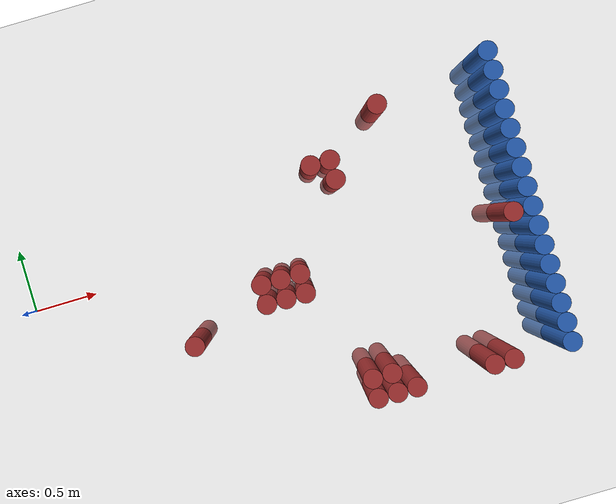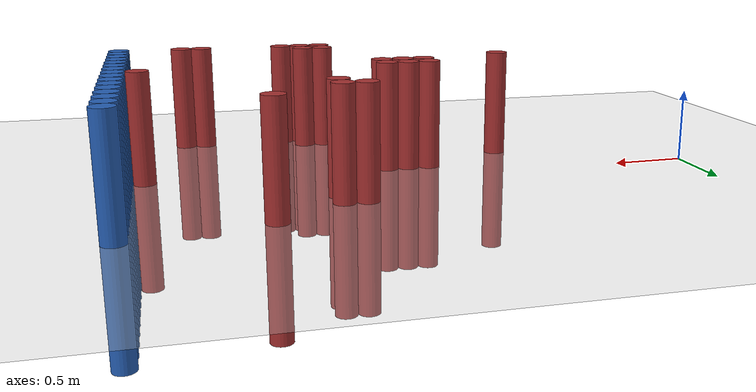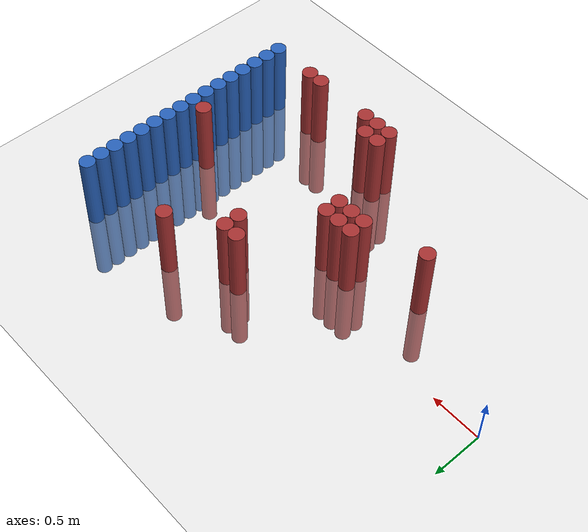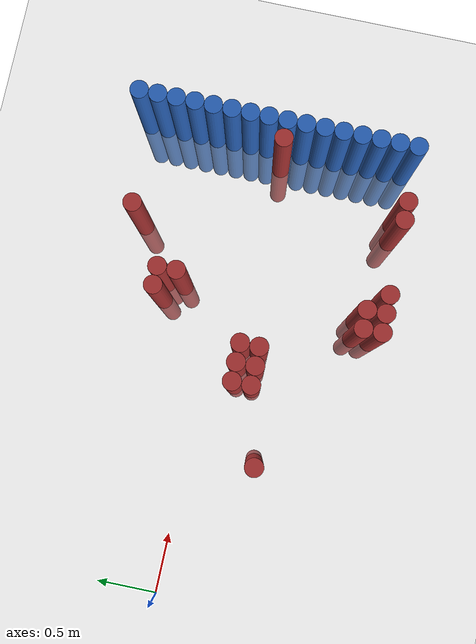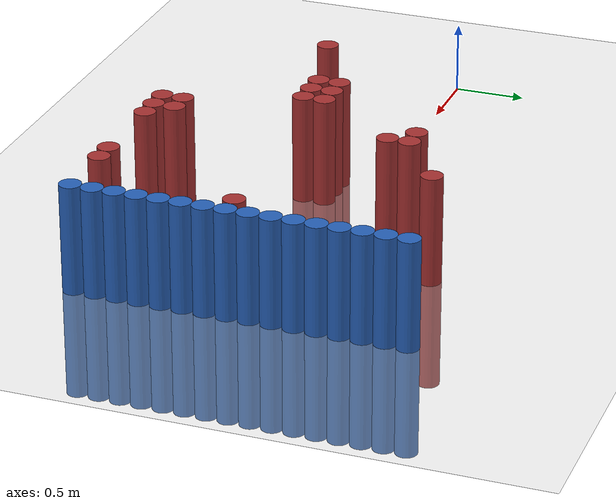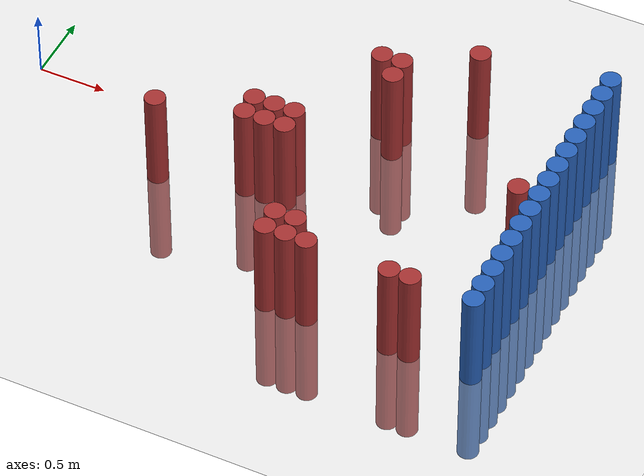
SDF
<sdf version="1.6">
 <world name="default">
  <model name="ground_plane">
   <static>1</static>
   <link name="link">
    <collision name="collision">
     <geometry><plane><normal>0 0 1</normal><size>100 100</size></plane></geometry>
     <surface><friction><ode><mu>100</mu><mu2>50</mu2></ode></friction></surface>
    </collision>
    <visual name="visual">
     <cast_shadows>0</cast_shadows>
     <geometry><plane><normal>0 0 1</normal><size>100 100</size></plane></geometry>
     <material>
      <script><uri>file://media/materials/scripts/gazebo.material</uri><name>Gazebo/Grey</name></script>
     </material>
    </visual>
   </link>
  </model>
  <model name="unit_cylinder_96">
   <static>1</static>
   <pose>3.925000 -1.325000 0.000000 0.000000 0.000000 0.000000</pose>
   <link name="link">
    <inertial>
     <mass>1</mass>
     <inertia><ixx>0.145833</ixx><ixy>0</ixy><ixz>0</ixz><iyy>0.145833</iyy><iyz>0</iyz><izz>0.125</izz></inertia>
    </inertial>
    <collision name="collision">
     <geometry><cylinder><radius>0.075000</radius><length>1.5</length></cylinder></geometry>
    </collision>
    <visual name="visual">
     <geometry><cylinder><radius>0.075000</radius><length>1.5</length></cylinder></geometry>
     <material>
      <ambient>0.152000 0.379000 0.720000 1</ambient>
      <diffuse>0.152000 0.379000 0.720000 1</diffuse>
     </material>
     <material>
      <script><name>Gazebo/Grey</name><uri>file://media/materials/scripts/gazebo.material</uri></script>
     </material>
    </visual>
   </link>
  </model>
  <model name="unit_cylinder_98">
   <static>1</static>
   <pose>3.925000 -1.175000 0.000000 0.000000 0.000000 0.000000</pose>
   <link name="link">
    <inertial>
     <mass>1</mass>
     <inertia><ixx>0.145833</ixx><ixy>0</ixy><ixz>0</ixz><iyy>0.145833</iyy><iyz>0</iyz><izz>0.125</izz></inertia>
    </inertial>
    <collision name="collision">
     <geometry><cylinder><radius>0.075000</radius><length>1.5</length></cylinder></geometry>
    </collision>
    <visual name="visual">
     <geometry><cylinder><radius>0.075000</radius><length>1.5</length></cylinder></geometry>
     <material>
      <ambient>0.152000 0.379000 0.720000 1</ambient>
      <diffuse>0.152000 0.379000 0.720000 1</diffuse>
     </material>
     <material>
      <script><name>Gazebo/Grey</name><uri>file://media/materials/scripts/gazebo.material</uri></script>
     </material>
    </visual>
   </link>
  </model>
  <model name="unit_cylinder_100">
   <static>1</static>
   <pose>3.925000 -1.025000 0.000000 0.000000 0.000000 0.000000</pose>
   <link name="link">
    <inertial>
     <mass>1</mass>
     <inertia><ixx>0.145833</ixx><ixy>0</ixy><ixz>0</ixz><iyy>0.145833</iyy><iyz>0</iyz><izz>0.125</izz></inertia>
    </inertial>
    <collision name="collision">
     <geometry><cylinder><radius>0.075000</radius><length>1.5</length></cylinder></geometry>
    </collision>
    <visual name="visual">
     <geometry><cylinder><radius>0.075000</radius><length>1.5</length></cylinder></geometry>
     <material>
      <ambient>0.152000 0.379000 0.720000 1</ambient>
      <diffuse>0.152000 0.379000 0.720000 1</diffuse>
     </material>
     <material>
      <script><name>Gazebo/Grey</name><uri>file://media/materials/scripts/gazebo.material</uri></script>
     </material>
    </visual>
   </link>
  </model>
  <model name="unit_cylinder_102">
   <static>1</static>
   <pose>3.925000 -0.875000 0.000000 0.000000 0.000000 0.000000</pose>
   <link name="link">
    <inertial>
     <mass>1</mass>
     <inertia><ixx>0.145833</ixx><ixy>0</ixy><ixz>0</ixz><iyy>0.145833</iyy><iyz>0</iyz><izz>0.125</izz></inertia>
    </inertial>
    <collision name="collision">
     <geometry><cylinder><radius>0.075000</radius><length>1.5</length></cylinder></geometry>
    </collision>
    <visual name="visual">
     <geometry><cylinder><radius>0.075000</radius><length>1.5</length></cylinder></geometry>
     <material>
      <ambient>0.152000 0.379000 0.720000 1</ambient>
      <diffuse>0.152000 0.379000 0.720000 1</diffuse>
     </material>
     <material>
      <script><name>Gazebo/Grey</name><uri>file://media/materials/scripts/gazebo.material</uri></script>
     </material>
    </visual>
   </link>
  </model>
  <model name="unit_cylinder_104">
   <static>1</static>
   <pose>3.925000 -0.725000 0.000000 0.000000 0.000000 0.000000</pose>
   <link name="link">
    <inertial>
     <mass>1</mass>
     <inertia><ixx>0.145833</ixx><ixy>0</ixy><ixz>0</ixz><iyy>0.145833</iyy><iyz>0</iyz><izz>0.125</izz></inertia>
    </inertial>
    <collision name="collision">
     <geometry><cylinder><radius>0.075000</radius><length>1.5</length></cylinder></geometry>
    </collision>
    <visual name="visual">
     <geometry><cylinder><radius>0.075000</radius><length>1.5</length></cylinder></geometry>
     <material>
      <ambient>0.152000 0.379000 0.720000 1</ambient>
      <diffuse>0.152000 0.379000 0.720000 1</diffuse>
     </material>
     <material>
      <script><name>Gazebo/Grey</name><uri>file://media/materials/scripts/gazebo.material</uri></script>
     </material>
    </visual>
   </link>
  </model>
  <model name="unit_cylinder_106">
   <static>1</static>
   <pose>3.925000 -0.575000 0.000000 0.000000 0.000000 0.000000</pose>
   <link name="link">
    <inertial>
     <mass>1</mass>
     <inertia><ixx>0.145833</ixx><ixy>0</ixy><ixz>0</ixz><iyy>0.145833</iyy><iyz>0</iyz><izz>0.125</izz></inertia>
    </inertial>
    <collision name="collision">
     <geometry><cylinder><radius>0.075000</radius><length>1.5</length></cylinder></geometry>
    </collision>
    <visual name="visual">
     <geometry><cylinder><radius>0.075000</radius><length>1.5</length></cylinder></geometry>
     <material>
      <ambient>0.152000 0.379000 0.720000 1</ambient>
      <diffuse>0.152000 0.379000 0.720000 1</diffuse>
     </material>
     <material>
      <script><name>Gazebo/Grey</name><uri>file://media/materials/scripts/gazebo.material</uri></script>
     </material>
    </visual>
   </link>
  </model>
  <model name="unit_cylinder_108">
   <static>1</static>
   <pose>3.925000 -0.425000 0.000000 0.000000 0.000000 0.000000</pose>
   <link name="link">
    <inertial>
     <mass>1</mass>
     <inertia><ixx>0.145833</ixx><ixy>0</ixy><ixz>0</ixz><iyy>0.145833</iyy><iyz>0</iyz><izz>0.125</izz></inertia>
    </inertial>
    <collision name="collision">
     <geometry><cylinder><radius>0.075000</radius><length>1.5</length></cylinder></geometry>
    </collision>
    <visual name="visual">
     <geometry><cylinder><radius>0.075000</radius><length>1.5</length></cylinder></geometry>
     <material>
      <ambient>0.152000 0.379000 0.720000 1</ambient>
      <diffuse>0.152000 0.379000 0.720000 1</diffuse>
     </material>
     <material>
      <script><name>Gazebo/Grey</name><uri>file://media/materials/scripts/gazebo.material</uri></script>
     </material>
    </visual>
   </link>
  </model>
  <model name="unit_cylinder_110">
   <static>1</static>
   <pose>3.925000 -0.275000 0.000000 0.000000 0.000000 0.000000</pose>
   <link name="link">
    <inertial>
     <mass>1</mass>
     <inertia><ixx>0.145833</ixx><ixy>0</ixy><ixz>0</ixz><iyy>0.145833</iyy><iyz>0</iyz><izz>0.125</izz></inertia>
    </inertial>
    <collision name="collision">
     <geometry><cylinder><radius>0.075000</radius><length>1.5</length></cylinder></geometry>
    </collision>
    <visual name="visual">
     <geometry><cylinder><radius>0.075000</radius><length>1.5</length></cylinder></geometry>
     <material>
      <ambient>0.152000 0.379000 0.720000 1</ambient>
      <diffuse>0.152000 0.379000 0.720000 1</diffuse>
     </material>
     <material>
      <script><name>Gazebo/Grey</name><uri>file://media/materials/scripts/gazebo.material</uri></script>
     </material>
    </visual>
   </link>
  </model>
  <model name="unit_cylinder_112">
   <static>1</static>
   <pose>3.925000 -0.125000 0.000000 0.000000 0.000000 0.000000</pose>
   <link name="link">
    <inertial>
     <mass>1</mass>
     <inertia><ixx>0.145833</ixx><ixy>0</ixy><ixz>0</ixz><iyy>0.145833</iyy><iyz>0</iyz><izz>0.125</izz></inertia>
    </inertial>
    <collision name="collision">
     <geometry><cylinder><radius>0.075000</radius><length>1.5</length></cylinder></geometry>
    </collision>
    <visual name="visual">
     <geometry><cylinder><radius>0.075000</radius><length>1.5</length></cylinder></geometry>
     <material>
      <ambient>0.152000 0.379000 0.720000 1</ambient>
      <diffuse>0.152000 0.379000 0.720000 1</diffuse>
     </material>
     <material>
      <script><name>Gazebo/Grey</name><uri>file://media/materials/scripts/gazebo.material</uri></script>
     </material>
    </visual>
   </link>
  </model>
  <model name="unit_cylinder_114">
   <static>1</static>
   <pose>3.925000 0.025000 0.000000 0.000000 0.000000 0.000000</pose>
   <link name="link">
    <inertial>
     <mass>1</mass>
     <inertia><ixx>0.145833</ixx><ixy>0</ixy><ixz>0</ixz><iyy>0.145833</iyy><iyz>0</iyz><izz>0.125</izz></inertia>
    </inertial>
    <collision name="collision">
     <geometry><cylinder><radius>0.075000</radius><length>1.5</length></cylinder></geometry>
    </collision>
    <visual name="visual">
     <geometry><cylinder><radius>0.075000</radius><length>1.5</length></cylinder></geometry>
     <material>
      <ambient>0.152000 0.379000 0.720000 1</ambient>
      <diffuse>0.152000 0.379000 0.720000 1</diffuse>
     </material>
     <material>
      <script><name>Gazebo/Grey</name><uri>file://media/materials/scripts/gazebo.material</uri></script>
     </material>
    </visual>
   </link>
  </model>
  <model name="unit_cylinder_116">
   <static>1</static>
   <pose>3.925000 0.175000 0.000000 0.000000 0.000000 0.000000</pose>
   <link name="link">
    <inertial>
     <mass>1</mass>
     <inertia><ixx>0.145833</ixx><ixy>0</ixy><ixz>0</ixz><iyy>0.145833</iyy><iyz>0</iyz><izz>0.125</izz></inertia>
    </inertial>
    <collision name="collision">
     <geometry><cylinder><radius>0.075000</radius><length>1.5</length></cylinder></geometry>
    </collision>
    <visual name="visual">
     <geometry><cylinder><radius>0.075000</radius><length>1.5</length></cylinder></geometry>
     <material>
      <ambient>0.152000 0.379000 0.720000 1</ambient>
      <diffuse>0.152000 0.379000 0.720000 1</diffuse>
     </material>
     <material>
      <script><name>Gazebo/Grey</name><uri>file://media/materials/scripts/gazebo.material</uri></script>
     </material>
    </visual>
   </link>
  </model>
  <model name="unit_cylinder_118">
   <static>1</static>
   <pose>3.925000 0.325000 0.000000 0.000000 0.000000 0.000000</pose>
   <link name="link">
    <inertial>
     <mass>1</mass>
     <inertia><ixx>0.145833</ixx><ixy>0</ixy><ixz>0</ixz><iyy>0.145833</iyy><iyz>0</iyz><izz>0.125</izz></inertia>
    </inertial>
    <collision name="collision">
     <geometry><cylinder><radius>0.075000</radius><length>1.5</length></cylinder></geometry>
    </collision>
    <visual name="visual">
     <geometry><cylinder><radius>0.075000</radius><length>1.5</length></cylinder></geometry>
     <material>
      <ambient>0.152000 0.379000 0.720000 1</ambient>
      <diffuse>0.152000 0.379000 0.720000 1</diffuse>
     </material>
     <material>
      <script><name>Gazebo/Grey</name><uri>file://media/materials/scripts/gazebo.material</uri></script>
     </material>
    </visual>
   </link>
  </model>
  <model name="unit_cylinder_120">
   <static>1</static>
   <pose>3.925000 0.475000 0.000000 0.000000 0.000000 0.000000</pose>
   <link name="link">
    <inertial>
     <mass>1</mass>
     <inertia><ixx>0.145833</ixx><ixy>0</ixy><ixz>0</ixz><iyy>0.145833</iyy><iyz>0</iyz><izz>0.125</izz></inertia>
    </inertial>
    <collision name="collision">
     <geometry><cylinder><radius>0.075000</radius><length>1.5</length></cylinder></geometry>
    </collision>
    <visual name="visual">
     <geometry><cylinder><radius>0.075000</radius><length>1.5</length></cylinder></geometry>
     <material>
      <ambient>0.152000 0.379000 0.720000 1</ambient>
      <diffuse>0.152000 0.379000 0.720000 1</diffuse>
     </material>
     <material>
      <script><name>Gazebo/Grey</name><uri>file://media/materials/scripts/gazebo.material</uri></script>
     </material>
    </visual>
   </link>
  </model>
  <model name="unit_cylinder_122">
   <static>1</static>
   <pose>3.925000 0.625000 0.000000 0.000000 0.000000 0.000000</pose>
   <link name="link">
    <inertial>
     <mass>1</mass>
     <inertia><ixx>0.145833</ixx><ixy>0</ixy><ixz>0</ixz><iyy>0.145833</iyy><iyz>0</iyz><izz>0.125</izz></inertia>
    </inertial>
    <collision name="collision">
     <geometry><cylinder><radius>0.075000</radius><length>1.5</length></cylinder></geometry>
    </collision>
    <visual name="visual">
     <geometry><cylinder><radius>0.075000</radius><length>1.5</length></cylinder></geometry>
     <material>
      <ambient>0.152000 0.379000 0.720000 1</ambient>
      <diffuse>0.152000 0.379000 0.720000 1</diffuse>
     </material>
     <material>
      <script><name>Gazebo/Grey</name><uri>file://media/materials/scripts/gazebo.material</uri></script>
     </material>
    </visual>
   </link>
  </model>
  <model name="unit_cylinder_124">
   <static>1</static>
   <pose>3.925000 0.775000 0.000000 0.000000 0.000000 0.000000</pose>
   <link name="link">
    <inertial>
     <mass>1</mass>
     <inertia><ixx>0.145833</ixx><ixy>0</ixy><ixz>0</ixz><iyy>0.145833</iyy><iyz>0</iyz><izz>0.125</izz></inertia>
    </inertial>
    <collision name="collision">
     <geometry><cylinder><radius>0.075000</radius><length>1.5</length></cylinder></geometry>
    </collision>
    <visual name="visual">
     <geometry><cylinder><radius>0.075000</radius><length>1.5</length></cylinder></geometry>
     <material>
      <ambient>0.152000 0.379000 0.720000 1</ambient>
      <diffuse>0.152000 0.379000 0.720000 1</diffuse>
     </material>
     <material>
      <script><name>Gazebo/Grey</name><uri>file://media/materials/scripts/gazebo.material</uri></script>
     </material>
    </visual>
   </link>
  </model>
  <model name="unit_cylinder_126">
   <static>1</static>
   <pose>3.925000 0.925000 0.000000 0.000000 0.000000 0.000000</pose>
   <link name="link">
    <inertial>
     <mass>1</mass>
     <inertia><ixx>0.145833</ixx><ixy>0</ixy><ixz>0</ixz><iyy>0.145833</iyy><iyz>0</iyz><izz>0.125</izz></inertia>
    </inertial>
    <collision name="collision">
     <geometry><cylinder><radius>0.075000</radius><length>1.5</length></cylinder></geometry>
    </collision>
    <visual name="visual">
     <geometry><cylinder><radius>0.075000</radius><length>1.5</length></cylinder></geometry>
     <material>
      <ambient>0.152000 0.379000 0.720000 1</ambient>
      <diffuse>0.152000 0.379000 0.720000 1</diffuse>
     </material>
     <material>
      <script><name>Gazebo/Grey</name><uri>file://media/materials/scripts/gazebo.material</uri></script>
     </material>
    </visual>
   </link>
  </model>
  <model name="unit_cylinder_373">
   <static>1</static>
   <pose>1.225000 -0.575000 0.000000 0.000000 0.000000 0.000000</pose>
   <link name="link">
    <inertial>
     <mass>1</mass>
     <inertia><ixx>0.145833</ixx><ixy>0</ixy><ixz>0</ixz><iyy>0.145833</iyy><iyz>0</iyz><izz>0.125</izz></inertia>
    </inertial>
    <collision name="collision">
     <geometry><cylinder><radius>0.075000</radius><length>1.5</length></cylinder></geometry>
    </collision>
    <visual name="visual">
     <geometry><cylinder><radius>0.075000</radius><length>1.5</length></cylinder></geometry>
     <material>
      <ambient>0.648000 0.192000 0.192000 1</ambient>
      <diffuse>0.648000 0.192000 0.192000 1</diffuse>
     </material>
     <material>
      <script><name>Gazebo/Grey</name><uri>file://media/materials/scripts/gazebo.material</uri></script>
     </material>
    </visual>
   </link>
  </model>
  <model name="unit_cylinder_392">
   <static>1</static>
   <pose>1.825000 -0.425000 0.000000 0.000000 0.000000 0.000000</pose>
   <link name="link">
    <inertial>
     <mass>1</mass>
     <inertia><ixx>0.145833</ixx><ixy>0</ixy><ixz>0</ixz><iyy>0.145833</iyy><iyz>0</iyz><izz>0.125</izz></inertia>
    </inertial>
    <collision name="collision">
     <geometry><cylinder><radius>0.075000</radius><length>1.5</length></cylinder></geometry>
    </collision>
    <visual name="visual">
     <geometry><cylinder><radius>0.075000</radius><length>1.5</length></cylinder></geometry>
     <material>
      <ambient>0.648000 0.192000 0.192000 1</ambient>
      <diffuse>0.648000 0.192000 0.192000 1</diffuse>
     </material>
     <material>
      <script><name>Gazebo/Grey</name><uri>file://media/materials/scripts/gazebo.material</uri></script>
     </material>
    </visual>
   </link>
  </model>
  <model name="unit_cylinder_393">
   <static>1</static>
   <pose>1.825000 -0.275000 0.000000 0.000000 0.000000 0.000000</pose>
   <link name="link">
    <inertial>
     <mass>1</mass>
     <inertia><ixx>0.145833</ixx><ixy>0</ixy><ixz>0</ixz><iyy>0.145833</iyy><iyz>0</iyz><izz>0.125</izz></inertia>
    </inertial>
    <collision name="collision">
     <geometry><cylinder><radius>0.075000</radius><length>1.5</length></cylinder></geometry>
    </collision>
    <visual name="visual">
     <geometry><cylinder><radius>0.075000</radius><length>1.5</length></cylinder></geometry>
     <material>
      <ambient>0.648000 0.192000 0.192000 1</ambient>
      <diffuse>0.648000 0.192000 0.192000 1</diffuse>
     </material>
     <material>
      <script><name>Gazebo/Grey</name><uri>file://media/materials/scripts/gazebo.material</uri></script>
     </material>
    </visual>
   </link>
  </model>
  <model name="unit_cylinder_395">
   <static>1</static>
   <pose>1.975000 -0.425000 0.000000 0.000000 0.000000 0.000000</pose>
   <link name="link">
    <inertial>
     <mass>1</mass>
     <inertia><ixx>0.145833</ixx><ixy>0</ixy><ixz>0</ixz><iyy>0.145833</iyy><iyz>0</iyz><izz>0.125</izz></inertia>
    </inertial>
    <collision name="collision">
     <geometry><cylinder><radius>0.075000</radius><length>1.5</length></cylinder></geometry>
    </collision>
    <visual name="visual">
     <geometry><cylinder><radius>0.075000</radius><length>1.5</length></cylinder></geometry>
     <material>
      <ambient>0.648000 0.192000 0.192000 1</ambient>
      <diffuse>0.648000 0.192000 0.192000 1</diffuse>
     </material>
     <material>
      <script><name>Gazebo/Grey</name><uri>file://media/materials/scripts/gazebo.material</uri></script>
     </material>
    </visual>
   </link>
  </model>
  <model name="unit_cylinder_396">
   <static>1</static>
   <pose>1.975000 -0.275000 0.000000 0.000000 0.000000 0.000000</pose>
   <link name="link">
    <inertial>
     <mass>1</mass>
     <inertia><ixx>0.145833</ixx><ixy>0</ixy><ixz>0</ixz><iyy>0.145833</iyy><iyz>0</iyz><izz>0.125</izz></inertia>
    </inertial>
    <collision name="collision">
     <geometry><cylinder><radius>0.075000</radius><length>1.5</length></cylinder></geometry>
    </collision>
    <visual name="visual">
     <geometry><cylinder><radius>0.075000</radius><length>1.5</length></cylinder></geometry>
     <material>
      <ambient>0.648000 0.192000 0.192000 1</ambient>
      <diffuse>0.648000 0.192000 0.192000 1</diffuse>
     </material>
     <material>
      <script><name>Gazebo/Grey</name><uri>file://media/materials/scripts/gazebo.material</uri></script>
     </material>
    </visual>
   </link>
  </model>
  <model name="unit_cylinder_399">
   <static>1</static>
   <pose>2.125000 -0.425000 0.000000 0.000000 0.000000 0.000000</pose>
   <link name="link">
    <inertial>
     <mass>1</mass>
     <inertia><ixx>0.145833</ixx><ixy>0</ixy><ixz>0</ixz><iyy>0.145833</iyy><iyz>0</iyz><izz>0.125</izz></inertia>
    </inertial>
    <collision name="collision">
     <geometry><cylinder><radius>0.075000</radius><length>1.5</length></cylinder></geometry>
    </collision>
    <visual name="visual">
     <geometry><cylinder><radius>0.075000</radius><length>1.5</length></cylinder></geometry>
     <material>
      <ambient>0.648000 0.192000 0.192000 1</ambient>
      <diffuse>0.648000 0.192000 0.192000 1</diffuse>
     </material>
     <material>
      <script><name>Gazebo/Grey</name><uri>file://media/materials/scripts/gazebo.material</uri></script>
     </material>
    </visual>
   </link>
  </model>
  <model name="unit_cylinder_400">
   <static>1</static>
   <pose>2.125000 -0.275000 0.000000 0.000000 0.000000 0.000000</pose>
   <link name="link">
    <inertial>
     <mass>1</mass>
     <inertia><ixx>0.145833</ixx><ixy>0</ixy><ixz>0</ixz><iyy>0.145833</iyy><iyz>0</iyz><izz>0.125</izz></inertia>
    </inertial>
    <collision name="collision">
     <geometry><cylinder><radius>0.075000</radius><length>1.5</length></cylinder></geometry>
    </collision>
    <visual name="visual">
     <geometry><cylinder><radius>0.075000</radius><length>1.5</length></cylinder></geometry>
     <material>
      <ambient>0.648000 0.192000 0.192000 1</ambient>
      <diffuse>0.648000 0.192000 0.192000 1</diffuse>
     </material>
     <material>
      <script><name>Gazebo/Grey</name><uri>file://media/materials/scripts/gazebo.material</uri></script>
     </material>
    </visual>
   </link>
  </model>
  <model name="unit_cylinder_405">
   <static>1</static>
   <pose>2.425000 -1.325000 0.000000 0.000000 0.000000 0.000000</pose>
   <link name="link">
    <inertial>
     <mass>1</mass>
     <inertia><ixx>0.145833</ixx><ixy>0</ixy><ixz>0</ixz><iyy>0.145833</iyy><iyz>0</iyz><izz>0.125</izz></inertia>
    </inertial>
    <collision name="collision">
     <geometry><cylinder><radius>0.075000</radius><length>1.5</length></cylinder></geometry>
    </collision>
    <visual name="visual">
     <geometry><cylinder><radius>0.075000</radius><length>1.5</length></cylinder></geometry>
     <material>
      <ambient>0.648000 0.192000 0.192000 1</ambient>
      <diffuse>0.648000 0.192000 0.192000 1</diffuse>
     </material>
     <material>
      <script><name>Gazebo/Grey</name><uri>file://media/materials/scripts/gazebo.material</uri></script>
     </material>
    </visual>
   </link>
  </model>
  <model name="unit_cylinder_406">
   <static>1</static>
   <pose>2.425000 -1.175000 0.000000 0.000000 0.000000 0.000000</pose>
   <link name="link">
    <inertial>
     <mass>1</mass>
     <inertia><ixx>0.145833</ixx><ixy>0</ixy><ixz>0</ixz><iyy>0.145833</iyy><iyz>0</iyz><izz>0.125</izz></inertia>
    </inertial>
    <collision name="collision">
     <geometry><cylinder><radius>0.075000</radius><length>1.5</length></cylinder></geometry>
    </collision>
    <visual name="visual">
     <geometry><cylinder><radius>0.075000</radius><length>1.5</length></cylinder></geometry>
     <material>
      <ambient>0.648000 0.192000 0.192000 1</ambient>
      <diffuse>0.648000 0.192000 0.192000 1</diffuse>
     </material>
     <material>
      <script><name>Gazebo/Grey</name><uri>file://media/materials/scripts/gazebo.material</uri></script>
     </material>
    </visual>
   </link>
  </model>
  <model name="unit_cylinder_407">
   <static>1</static>
   <pose>2.425000 0.475000 0.000000 0.000000 0.000000 0.000000</pose>
   <link name="link">
    <inertial>
     <mass>1</mass>
     <inertia><ixx>0.145833</ixx><ixy>0</ixy><ixz>0</ixz><iyy>0.145833</iyy><iyz>0</iyz><izz>0.125</izz></inertia>
    </inertial>
    <collision name="collision">
     <geometry><cylinder><radius>0.075000</radius><length>1.5</length></cylinder></geometry>
    </collision>
    <visual name="visual">
     <geometry><cylinder><radius>0.075000</radius><length>1.5</length></cylinder></geometry>
     <material>
      <ambient>0.648000 0.192000 0.192000 1</ambient>
      <diffuse>0.648000 0.192000 0.192000 1</diffuse>
     </material>
     <material>
      <script><name>Gazebo/Grey</name><uri>file://media/materials/scripts/gazebo.material</uri></script>
     </material>
    </visual>
   </link>
  </model>
  <model name="unit_cylinder_409">
   <static>1</static>
   <pose>2.575000 -1.325000 0.000000 0.000000 0.000000 0.000000</pose>
   <link name="link">
    <inertial>
     <mass>1</mass>
     <inertia><ixx>0.145833</ixx><ixy>0</ixy><ixz>0</ixz><iyy>0.145833</iyy><iyz>0</iyz><izz>0.125</izz></inertia>
    </inertial>
    <collision name="collision">
     <geometry><cylinder><radius>0.075000</radius><length>1.5</length></cylinder></geometry>
    </collision>
    <visual name="visual">
     <geometry><cylinder><radius>0.075000</radius><length>1.5</length></cylinder></geometry>
     <material>
      <ambient>0.648000 0.192000 0.192000 1</ambient>
      <diffuse>0.648000 0.192000 0.192000 1</diffuse>
     </material>
     <material>
      <script><name>Gazebo/Grey</name><uri>file://media/materials/scripts/gazebo.material</uri></script>
     </material>
    </visual>
   </link>
  </model>
  <model name="unit_cylinder_410">
   <static>1</static>
   <pose>2.575000 -1.175000 0.000000 0.000000 0.000000 0.000000</pose>
   <link name="link">
    <inertial>
     <mass>1</mass>
     <inertia><ixx>0.145833</ixx><ixy>0</ixy><ixz>0</ixz><iyy>0.145833</iyy><iyz>0</iyz><izz>0.125</izz></inertia>
    </inertial>
    <collision name="collision">
     <geometry><cylinder><radius>0.075000</radius><length>1.5</length></cylinder></geometry>
    </collision>
    <visual name="visual">
     <geometry><cylinder><radius>0.075000</radius><length>1.5</length></cylinder></geometry>
     <material>
      <ambient>0.648000 0.192000 0.192000 1</ambient>
      <diffuse>0.648000 0.192000 0.192000 1</diffuse>
     </material>
     <material>
      <script><name>Gazebo/Grey</name><uri>file://media/materials/scripts/gazebo.material</uri></script>
     </material>
    </visual>
   </link>
  </model>
  <model name="unit_cylinder_411">
   <static>1</static>
   <pose>2.575000 0.325000 0.000000 0.000000 0.000000 0.000000</pose>
   <link name="link">
    <inertial>
     <mass>1</mass>
     <inertia><ixx>0.145833</ixx><ixy>0</ixy><ixz>0</ixz><iyy>0.145833</iyy><iyz>0</iyz><izz>0.125</izz></inertia>
    </inertial>
    <collision name="collision">
     <geometry><cylinder><radius>0.075000</radius><length>1.5</length></cylinder></geometry>
    </collision>
    <visual name="visual">
     <geometry><cylinder><radius>0.075000</radius><length>1.5</length></cylinder></geometry>
     <material>
      <ambient>0.648000 0.192000 0.192000 1</ambient>
      <diffuse>0.648000 0.192000 0.192000 1</diffuse>
     </material>
     <material>
      <script><name>Gazebo/Grey</name><uri>file://media/materials/scripts/gazebo.material</uri></script>
     </material>
    </visual>
   </link>
  </model>
  <model name="unit_cylinder_412">
   <static>1</static>
   <pose>2.575000 0.475000 0.000000 0.000000 0.000000 0.000000</pose>
   <link name="link">
    <inertial>
     <mass>1</mass>
     <inertia><ixx>0.145833</ixx><ixy>0</ixy><ixz>0</ixz><iyy>0.145833</iyy><iyz>0</iyz><izz>0.125</izz></inertia>
    </inertial>
    <collision name="collision">
     <geometry><cylinder><radius>0.075000</radius><length>1.5</length></cylinder></geometry>
    </collision>
    <visual name="visual">
     <geometry><cylinder><radius>0.075000</radius><length>1.5</length></cylinder></geometry>
     <material>
      <ambient>0.648000 0.192000 0.192000 1</ambient>
      <diffuse>0.648000 0.192000 0.192000 1</diffuse>
     </material>
     <material>
      <script><name>Gazebo/Grey</name><uri>file://media/materials/scripts/gazebo.material</uri></script>
     </material>
    </visual>
   </link>
  </model>
  <model name="unit_cylinder_414">
   <static>1</static>
   <pose>2.725000 -1.325000 0.000000 0.000000 0.000000 0.000000</pose>
   <link name="link">
    <inertial>
     <mass>1</mass>
     <inertia><ixx>0.145833</ixx><ixy>0</ixy><ixz>0</ixz><iyy>0.145833</iyy><iyz>0</iyz><izz>0.125</izz></inertia>
    </inertial>
    <collision name="collision">
     <geometry><cylinder><radius>0.075000</radius><length>1.5</length></cylinder></geometry>
    </collision>
    <visual name="visual">
     <geometry><cylinder><radius>0.075000</radius><length>1.5</length></cylinder></geometry>
     <material>
      <ambient>0.648000 0.192000 0.192000 1</ambient>
      <diffuse>0.648000 0.192000 0.192000 1</diffuse>
     </material>
     <material>
      <script><name>Gazebo/Grey</name><uri>file://media/materials/scripts/gazebo.material</uri></script>
     </material>
    </visual>
   </link>
  </model>
  <model name="unit_cylinder_421">
   <static>1</static>
   <pose>3.025000 0.775000 0.000000 0.000000 0.000000 0.000000</pose>
   <link name="link">
    <inertial>
     <mass>1</mass>
     <inertia><ixx>0.145833</ixx><ixy>0</ixy><ixz>0</ixz><iyy>0.145833</iyy><iyz>0</iyz><izz>0.125</izz></inertia>
    </inertial>
    <collision name="collision">
     <geometry><cylinder><radius>0.075000</radius><length>1.5</length></cylinder></geometry>
    </collision>
    <visual name="visual">
     <geometry><cylinder><radius>0.075000</radius><length>1.5</length></cylinder></geometry>
     <material>
      <ambient>0.648000 0.192000 0.192000 1</ambient>
      <diffuse>0.648000 0.192000 0.192000 1</diffuse>
     </material>
     <material>
      <script><name>Gazebo/Grey</name><uri>file://media/materials/scripts/gazebo.material</uri></script>
     </material>
    </visual>
   </link>
  </model>
  <model name="unit_cylinder_429">
   <static>1</static>
   <pose>3.325000 -1.325000 0.000000 0.000000 0.000000 0.000000</pose>
   <link name="link">
    <inertial>
     <mass>1</mass>
     <inertia><ixx>0.145833</ixx><ixy>0</ixy><ixz>0</ixz><iyy>0.145833</iyy><iyz>0</iyz><izz>0.125</izz></inertia>
    </inertial>
    <collision name="collision">
     <geometry><cylinder><radius>0.075000</radius><length>1.5</length></cylinder></geometry>
    </collision>
    <visual name="visual">
     <geometry><cylinder><radius>0.075000</radius><length>1.5</length></cylinder></geometry>
     <material>
      <ambient>0.648000 0.192000 0.192000 1</ambient>
      <diffuse>0.648000 0.192000 0.192000 1</diffuse>
     </material>
     <material>
      <script><name>Gazebo/Grey</name><uri>file://media/materials/scripts/gazebo.material</uri></script>
     </material>
    </visual>
   </link>
  </model>
  <model name="unit_cylinder_431">
   <static>1</static>
   <pose>3.475000 -1.325000 0.000000 0.000000 0.000000 0.000000</pose>
   <link name="link">
    <inertial>
     <mass>1</mass>
     <inertia><ixx>0.145833</ixx><ixy>0</ixy><ixz>0</ixz><iyy>0.145833</iyy><iyz>0</iyz><izz>0.125</izz></inertia>
    </inertial>
    <collision name="collision">
     <geometry><cylinder><radius>0.075000</radius><length>1.5</length></cylinder></geometry>
    </collision>
    <visual name="visual">
     <geometry><cylinder><radius>0.075000</radius><length>1.5</length></cylinder></geometry>
     <material>
      <ambient>0.648000 0.192000 0.192000 1</ambient>
      <diffuse>0.648000 0.192000 0.192000 1</diffuse>
     </material>
     <material>
      <script><name>Gazebo/Grey</name><uri>file://media/materials/scripts/gazebo.material</uri></script>
     </material>
    </visual>
   </link>
  </model>
  <model name="unit_cylinder_437">
   <static>1</static>
   <pose>3.775000 -0.275000 0.000000 0.000000 0.000000 0.000000</pose>
   <link name="link">
    <inertial>
     <mass>1</mass>
     <inertia><ixx>0.145833</ixx><ixy>0</ixy><ixz>0</ixz><iyy>0.145833</iyy><iyz>0</iyz><izz>0.125</izz></inertia>
    </inertial>
    <collision name="collision">
     <geometry><cylinder><radius>0.075000</radius><length>1.5</length></cylinder></geometry>
    </collision>
    <visual name="visual">
     <geometry><cylinder><radius>0.075000</radius><length>1.5</length></cylinder></geometry>
     <material>
      <ambient>0.648000 0.192000 0.192000 1</ambient>
      <diffuse>0.648000 0.192000 0.192000 1</diffuse>
     </material>
     <material>
      <script><name>Gazebo/Grey</name><uri>file://media/materials/scripts/gazebo.material</uri></script>
     </material>
    </visual>
   </link>
  </model>
  <model name="unit_cylinder_454">
   <static>1</static>
   <pose>3.925000 -1.325000 0.000000 0.000000 0.000000 0.000000</pose>
   <link name="link">
    <inertial>
     <mass>1</mass>
     <inertia><ixx>0.145833</ixx><ixy>0</ixy><ixz>0</ixz><iyy>0.145833</iyy><iyz>0</iyz><izz>0.125</izz></inertia>
    </inertial>
    <collision name="collision">
     <geometry><cylinder><radius>0.075000</radius><length>1.5</length></cylinder></geometry>
    </collision>
    <visual name="visual">
     <geometry><cylinder><radius>0.075000</radius><length>1.5</length></cylinder></geometry>
     <material>
      <ambient>0.152000 0.379000 0.720000 1</ambient>
      <diffuse>0.152000 0.379000 0.720000 1</diffuse>
     </material>
     <material>
      <script><name>Gazebo/Grey</name><uri>file://media/materials/scripts/gazebo.material</uri></script>
     </material>
    </visual>
   </link>
  </model>
  <model name="unit_cylinder_455">
   <static>1</static>
   <pose>3.925000 -1.175000 0.000000 0.000000 0.000000 0.000000</pose>
   <link name="link">
    <inertial>
     <mass>1</mass>
     <inertia><ixx>0.145833</ixx><ixy>0</ixy><ixz>0</ixz><iyy>0.145833</iyy><iyz>0</iyz><izz>0.125</izz></inertia>
    </inertial>
    <collision name="collision">
     <geometry><cylinder><radius>0.075000</radius><length>1.5</length></cylinder></geometry>
    </collision>
    <visual name="visual">
     <geometry><cylinder><radius>0.075000</radius><length>1.5</length></cylinder></geometry>
     <material>
      <ambient>0.152000 0.379000 0.720000 1</ambient>
      <diffuse>0.152000 0.379000 0.720000 1</diffuse>
     </material>
     <material>
      <script><name>Gazebo/Grey</name><uri>file://media/materials/scripts/gazebo.material</uri></script>
     </material>
    </visual>
   </link>
  </model>
  <model name="unit_cylinder_456">
   <static>1</static>
   <pose>3.925000 -1.025000 0.000000 0.000000 0.000000 0.000000</pose>
   <link name="link">
    <inertial>
     <mass>1</mass>
     <inertia><ixx>0.145833</ixx><ixy>0</ixy><ixz>0</ixz><iyy>0.145833</iyy><iyz>0</iyz><izz>0.125</izz></inertia>
    </inertial>
    <collision name="collision">
     <geometry><cylinder><radius>0.075000</radius><length>1.5</length></cylinder></geometry>
    </collision>
    <visual name="visual">
     <geometry><cylinder><radius>0.075000</radius><length>1.5</length></cylinder></geometry>
     <material>
      <ambient>0.152000 0.379000 0.720000 1</ambient>
      <diffuse>0.152000 0.379000 0.720000 1</diffuse>
     </material>
     <material>
      <script><name>Gazebo/Grey</name><uri>file://media/materials/scripts/gazebo.material</uri></script>
     </material>
    </visual>
   </link>
  </model>
  <model name="unit_cylinder_457">
   <static>1</static>
   <pose>3.925000 -0.875000 0.000000 0.000000 0.000000 0.000000</pose>
   <link name="link">
    <inertial>
     <mass>1</mass>
     <inertia><ixx>0.145833</ixx><ixy>0</ixy><ixz>0</ixz><iyy>0.145833</iyy><iyz>0</iyz><izz>0.125</izz></inertia>
    </inertial>
    <collision name="collision">
     <geometry><cylinder><radius>0.075000</radius><length>1.5</length></cylinder></geometry>
    </collision>
    <visual name="visual">
     <geometry><cylinder><radius>0.075000</radius><length>1.5</length></cylinder></geometry>
     <material>
      <ambient>0.152000 0.379000 0.720000 1</ambient>
      <diffuse>0.152000 0.379000 0.720000 1</diffuse>
     </material>
     <material>
      <script><name>Gazebo/Grey</name><uri>file://media/materials/scripts/gazebo.material</uri></script>
     </material>
    </visual>
   </link>
  </model>
  <model name="unit_cylinder_458">
   <static>1</static>
   <pose>3.925000 -0.725000 0.000000 0.000000 0.000000 0.000000</pose>
   <link name="link">
    <inertial>
     <mass>1</mass>
     <inertia><ixx>0.145833</ixx><ixy>0</ixy><ixz>0</ixz><iyy>0.145833</iyy><iyz>0</iyz><izz>0.125</izz></inertia>
    </inertial>
    <collision name="collision">
     <geometry><cylinder><radius>0.075000</radius><length>1.5</length></cylinder></geometry>
    </collision>
    <visual name="visual">
     <geometry><cylinder><radius>0.075000</radius><length>1.5</length></cylinder></geometry>
     <material>
      <ambient>0.152000 0.379000 0.720000 1</ambient>
      <diffuse>0.152000 0.379000 0.720000 1</diffuse>
     </material>
     <material>
      <script><name>Gazebo/Grey</name><uri>file://media/materials/scripts/gazebo.material</uri></script>
     </material>
    </visual>
   </link>
  </model>
  <model name="unit_cylinder_459">
   <static>1</static>
   <pose>3.925000 -0.575000 0.000000 0.000000 0.000000 0.000000</pose>
   <link name="link">
    <inertial>
     <mass>1</mass>
     <inertia><ixx>0.145833</ixx><ixy>0</ixy><ixz>0</ixz><iyy>0.145833</iyy><iyz>0</iyz><izz>0.125</izz></inertia>
    </inertial>
    <collision name="collision">
     <geometry><cylinder><radius>0.075000</radius><length>1.5</length></cylinder></geometry>
    </collision>
    <visual name="visual">
     <geometry><cylinder><radius>0.075000</radius><length>1.5</length></cylinder></geometry>
     <material>
      <ambient>0.152000 0.379000 0.720000 1</ambient>
      <diffuse>0.152000 0.379000 0.720000 1</diffuse>
     </material>
     <material>
      <script><name>Gazebo/Grey</name><uri>file://media/materials/scripts/gazebo.material</uri></script>
     </material>
    </visual>
   </link>
  </model>
  <model name="unit_cylinder_460">
   <static>1</static>
   <pose>3.925000 -0.425000 0.000000 0.000000 0.000000 0.000000</pose>
   <link name="link">
    <inertial>
     <mass>1</mass>
     <inertia><ixx>0.145833</ixx><ixy>0</ixy><ixz>0</ixz><iyy>0.145833</iyy><iyz>0</iyz><izz>0.125</izz></inertia>
    </inertial>
    <collision name="collision">
     <geometry><cylinder><radius>0.075000</radius><length>1.5</length></cylinder></geometry>
    </collision>
    <visual name="visual">
     <geometry><cylinder><radius>0.075000</radius><length>1.5</length></cylinder></geometry>
     <material>
      <ambient>0.152000 0.379000 0.720000 1</ambient>
      <diffuse>0.152000 0.379000 0.720000 1</diffuse>
     </material>
     <material>
      <script><name>Gazebo/Grey</name><uri>file://media/materials/scripts/gazebo.material</uri></script>
     </material>
    </visual>
   </link>
  </model>
  <model name="unit_cylinder_461">
   <static>1</static>
   <pose>3.925000 -0.275000 0.000000 0.000000 0.000000 0.000000</pose>
   <link name="link">
    <inertial>
     <mass>1</mass>
     <inertia><ixx>0.145833</ixx><ixy>0</ixy><ixz>0</ixz><iyy>0.145833</iyy><iyz>0</iyz><izz>0.125</izz></inertia>
    </inertial>
    <collision name="collision">
     <geometry><cylinder><radius>0.075000</radius><length>1.5</length></cylinder></geometry>
    </collision>
    <visual name="visual">
     <geometry><cylinder><radius>0.075000</radius><length>1.5</length></cylinder></geometry>
     <material>
      <ambient>0.152000 0.379000 0.720000 1</ambient>
      <diffuse>0.152000 0.379000 0.720000 1</diffuse>
     </material>
     <material>
      <script><name>Gazebo/Grey</name><uri>file://media/materials/scripts/gazebo.material</uri></script>
     </material>
    </visual>
   </link>
  </model>
  <model name="unit_cylinder_462">
   <static>1</static>
   <pose>3.925000 -0.125000 0.000000 0.000000 0.000000 0.000000</pose>
   <link name="link">
    <inertial>
     <mass>1</mass>
     <inertia><ixx>0.145833</ixx><ixy>0</ixy><ixz>0</ixz><iyy>0.145833</iyy><iyz>0</iyz><izz>0.125</izz></inertia>
    </inertial>
    <collision name="collision">
     <geometry><cylinder><radius>0.075000</radius><length>1.5</length></cylinder></geometry>
    </collision>
    <visual name="visual">
     <geometry><cylinder><radius>0.075000</radius><length>1.5</length></cylinder></geometry>
     <material>
      <ambient>0.152000 0.379000 0.720000 1</ambient>
      <diffuse>0.152000 0.379000 0.720000 1</diffuse>
     </material>
     <material>
      <script><name>Gazebo/Grey</name><uri>file://media/materials/scripts/gazebo.material</uri></script>
     </material>
    </visual>
   </link>
  </model>
  <model name="unit_cylinder_463">
   <static>1</static>
   <pose>3.925000 0.025000 0.000000 0.000000 0.000000 0.000000</pose>
   <link name="link">
    <inertial>
     <mass>1</mass>
     <inertia><ixx>0.145833</ixx><ixy>0</ixy><ixz>0</ixz><iyy>0.145833</iyy><iyz>0</iyz><izz>0.125</izz></inertia>
    </inertial>
    <collision name="collision">
     <geometry><cylinder><radius>0.075000</radius><length>1.5</length></cylinder></geometry>
    </collision>
    <visual name="visual">
     <geometry><cylinder><radius>0.075000</radius><length>1.5</length></cylinder></geometry>
     <material>
      <ambient>0.152000 0.379000 0.720000 1</ambient>
      <diffuse>0.152000 0.379000 0.720000 1</diffuse>
     </material>
     <material>
      <script><name>Gazebo/Grey</name><uri>file://media/materials/scripts/gazebo.material</uri></script>
     </material>
    </visual>
   </link>
  </model>
  <model name="unit_cylinder_464">
   <static>1</static>
   <pose>3.925000 0.175000 0.000000 0.000000 0.000000 0.000000</pose>
   <link name="link">
    <inertial>
     <mass>1</mass>
     <inertia><ixx>0.145833</ixx><ixy>0</ixy><ixz>0</ixz><iyy>0.145833</iyy><iyz>0</iyz><izz>0.125</izz></inertia>
    </inertial>
    <collision name="collision">
     <geometry><cylinder><radius>0.075000</radius><length>1.5</length></cylinder></geometry>
    </collision>
    <visual name="visual">
     <geometry><cylinder><radius>0.075000</radius><length>1.5</length></cylinder></geometry>
     <material>
      <ambient>0.152000 0.379000 0.720000 1</ambient>
      <diffuse>0.152000 0.379000 0.720000 1</diffuse>
     </material>
     <material>
      <script><name>Gazebo/Grey</name><uri>file://media/materials/scripts/gazebo.material</uri></script>
     </material>
    </visual>
   </link>
  </model>
  <model name="unit_cylinder_465">
   <static>1</static>
   <pose>3.925000 0.325000 0.000000 0.000000 0.000000 0.000000</pose>
   <link name="link">
    <inertial>
     <mass>1</mass>
     <inertia><ixx>0.145833</ixx><ixy>0</ixy><ixz>0</ixz><iyy>0.145833</iyy><iyz>0</iyz><izz>0.125</izz></inertia>
    </inertial>
    <collision name="collision">
     <geometry><cylinder><radius>0.075000</radius><length>1.5</length></cylinder></geometry>
    </collision>
    <visual name="visual">
     <geometry><cylinder><radius>0.075000</radius><length>1.5</length></cylinder></geometry>
     <material>
      <ambient>0.152000 0.379000 0.720000 1</ambient>
      <diffuse>0.152000 0.379000 0.720000 1</diffuse>
     </material>
     <material>
      <script><name>Gazebo/Grey</name><uri>file://media/materials/scripts/gazebo.material</uri></script>
     </material>
    </visual>
   </link>
  </model>
  <model name="unit_cylinder_466">
   <static>1</static>
   <pose>3.925000 0.475000 0.000000 0.000000 0.000000 0.000000</pose>
   <link name="link">
    <inertial>
     <mass>1</mass>
     <inertia><ixx>0.145833</ixx><ixy>0</ixy><ixz>0</ixz><iyy>0.145833</iyy><iyz>0</iyz><izz>0.125</izz></inertia>
    </inertial>
    <collision name="collision">
     <geometry><cylinder><radius>0.075000</radius><length>1.5</length></cylinder></geometry>
    </collision>
    <visual name="visual">
     <geometry><cylinder><radius>0.075000</radius><length>1.5</length></cylinder></geometry>
     <material>
      <ambient>0.152000 0.379000 0.720000 1</ambient>
      <diffuse>0.152000 0.379000 0.720000 1</diffuse>
     </material>
     <material>
      <script><name>Gazebo/Grey</name><uri>file://media/materials/scripts/gazebo.material</uri></script>
     </material>
    </visual>
   </link>
  </model>
  <model name="unit_cylinder_467">
   <static>1</static>
   <pose>3.925000 0.625000 0.000000 0.000000 0.000000 0.000000</pose>
   <link name="link">
    <inertial>
     <mass>1</mass>
     <inertia><ixx>0.145833</ixx><ixy>0</ixy><ixz>0</ixz><iyy>0.145833</iyy><iyz>0</iyz><izz>0.125</izz></inertia>
    </inertial>
    <collision name="collision">
     <geometry><cylinder><radius>0.075000</radius><length>1.5</length></cylinder></geometry>
    </collision>
    <visual name="visual">
     <geometry><cylinder><radius>0.075000</radius><length>1.5</length></cylinder></geometry>
     <material>
      <ambient>0.152000 0.379000 0.720000 1</ambient>
      <diffuse>0.152000 0.379000 0.720000 1</diffuse>
     </material>
     <material>
      <script><name>Gazebo/Grey</name><uri>file://media/materials/scripts/gazebo.material</uri></script>
     </material>
    </visual>
   </link>
  </model>
  <model name="unit_cylinder_468">
   <static>1</static>
   <pose>3.925000 0.775000 0.000000 0.000000 0.000000 0.000000</pose>
   <link name="link">
    <inertial>
     <mass>1</mass>
     <inertia><ixx>0.145833</ixx><ixy>0</ixy><ixz>0</ixz><iyy>0.145833</iyy><iyz>0</iyz><izz>0.125</izz></inertia>
    </inertial>
    <collision name="collision">
     <geometry><cylinder><radius>0.075000</radius><length>1.5</length></cylinder></geometry>
    </collision>
    <visual name="visual">
     <geometry><cylinder><radius>0.075000</radius><length>1.5</length></cylinder></geometry>
     <material>
      <ambient>0.152000 0.379000 0.720000 1</ambient>
      <diffuse>0.152000 0.379000 0.720000 1</diffuse>
     </material>
     <material>
      <script><name>Gazebo/Grey</name><uri>file://media/materials/scripts/gazebo.material</uri></script>
     </material>
    </visual>
   </link>
  </model>
 </world>
</sdf>
